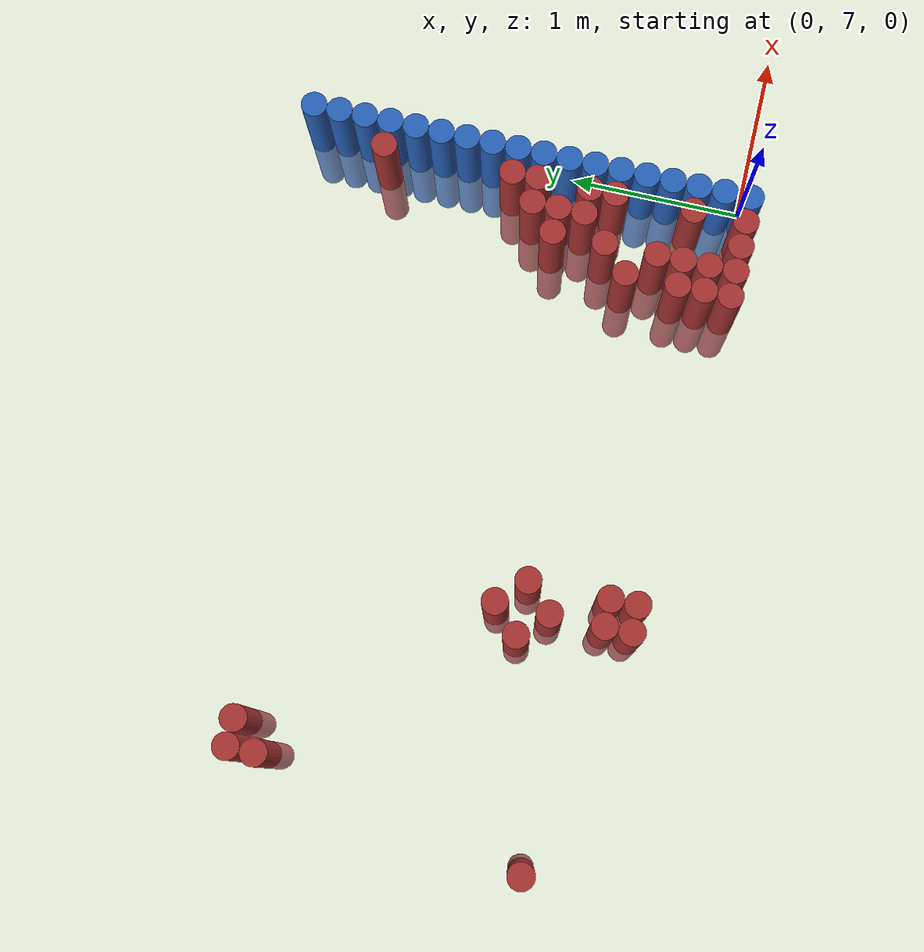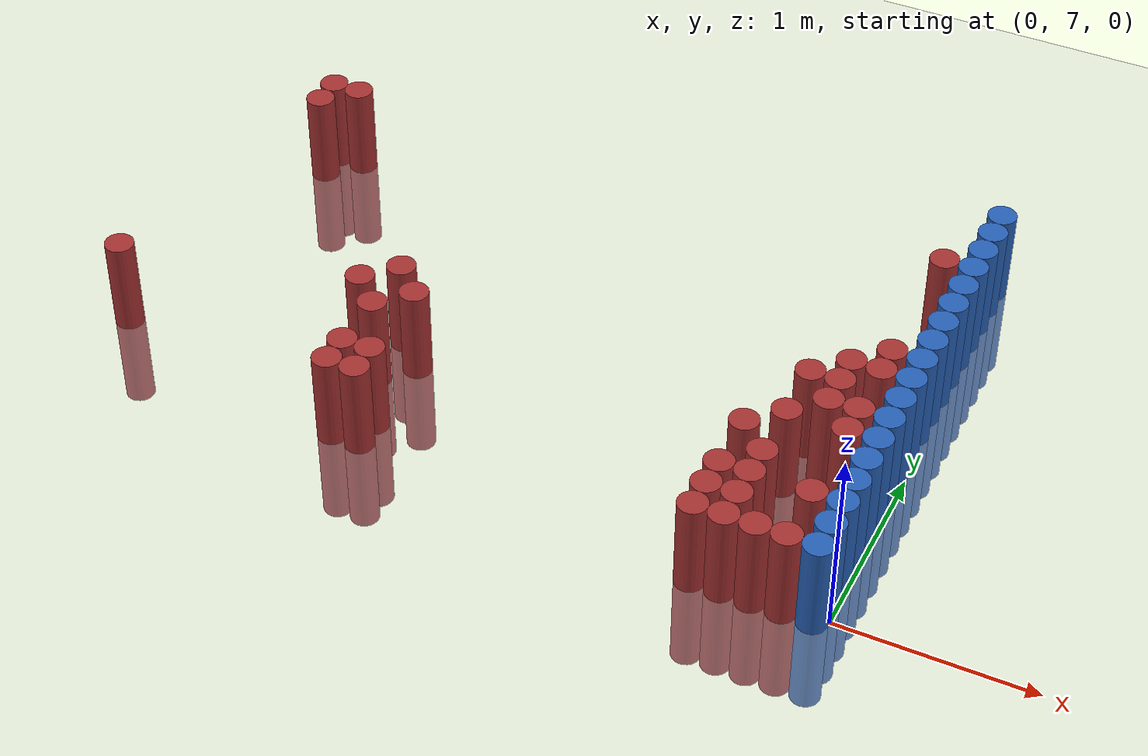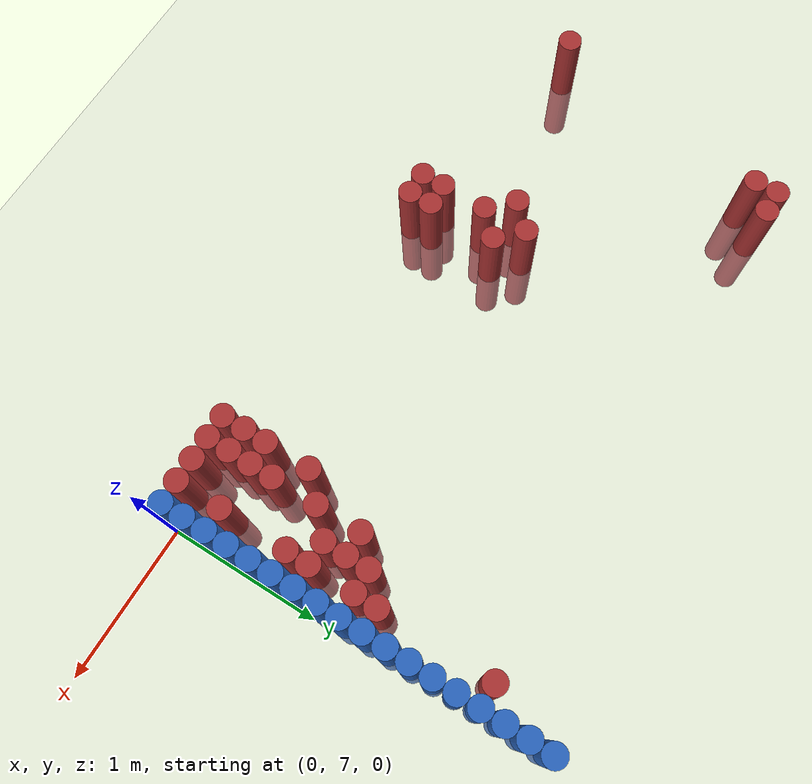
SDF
<sdf version="1.6">
 <world name="default">
  <model name="ground_plane">
   <static>1</static>
   <link name="link">
    <collision name="collision">
     <geometry><plane><normal>0 0 1</normal><size>100 100</size></plane></geometry>
     <surface><friction><ode><mu>100</mu><mu2>50</mu2></ode></friction></surface>
    </collision>
    <visual name="visual">
     <cast_shadows>0</cast_shadows>
     <geometry><plane><normal>0 0 1</normal><size>100 100</size></plane></geometry>
     <material>
      <script><uri>file://media/materials/scripts/gazebo.material</uri><name>Gazebo/Grey</name></script>
     </material>
    </visual>
   </link>
  </model>
  <model name="unit_cylinder_153">
   <static>1</static>
   <pose>-3.975000 7.425000 0.000000 0.000000 0.000000 0.000000</pose>
   <link name="link">
    <inertial>
     <mass>1</mass>
     <inertia><ixx>0.145833</ixx><ixy>0</ixy><ixz>0</ixz><iyy>0.145833</iyy><iyz>0</iyz><izz>0.125</izz></inertia>
    </inertial>
    <collision name="collision">
     <geometry><cylinder><radius>0.075000</radius><length>1</length></cylinder></geometry>
    </collision>
    <visual name="visual">
     <geometry><cylinder><radius>0.075000</radius><length>1</length></cylinder></geometry>
     <material>
      <ambient>0.648000 0.192000 0.192000 1</ambient>
      <diffuse>0.648000 0.192000 0.192000 1</diffuse>
     </material>
     <material>
      <script><name>Gazebo/Grey</name><uri>file://media/materials/scripts/gazebo.material</uri></script>
     </material>
    </visual>
   </link>
  </model>
  <model name="unit_cylinder_155">
   <static>1</static>
   <pose>-3.675000 8.925000 0.000000 0.000000 0.000000 0.000000</pose>
   <link name="link">
    <inertial>
     <mass>1</mass>
     <inertia><ixx>0.145833</ixx><ixy>0</ixy><ixz>0</ixz><iyy>0.145833</iyy><iyz>0</iyz><izz>0.125</izz></inertia>
    </inertial>
    <collision name="collision">
     <geometry><cylinder><radius>0.075000</radius><length>1</length></cylinder></geometry>
    </collision>
    <visual name="visual">
     <geometry><cylinder><radius>0.075000</radius><length>1</length></cylinder></geometry>
     <material>
      <ambient>0.648000 0.192000 0.192000 1</ambient>
      <diffuse>0.648000 0.192000 0.192000 1</diffuse>
     </material>
     <material>
      <script><name>Gazebo/Grey</name><uri>file://media/materials/scripts/gazebo.material</uri></script>
     </material>
    </visual>
   </link>
  </model>
  <model name="unit_cylinder_156">
   <static>1</static>
   <pose>-3.675000 9.075000 0.000000 0.000000 0.000000 0.000000</pose>
   <link name="link">
    <inertial>
     <mass>1</mass>
     <inertia><ixx>0.145833</ixx><ixy>0</ixy><ixz>0</ixz><iyy>0.145833</iyy><iyz>0</iyz><izz>0.125</izz></inertia>
    </inertial>
    <collision name="collision">
     <geometry><cylinder><radius>0.075000</radius><length>1</length></cylinder></geometry>
    </collision>
    <visual name="visual">
     <geometry><cylinder><radius>0.075000</radius><length>1</length></cylinder></geometry>
     <material>
      <ambient>0.648000 0.192000 0.192000 1</ambient>
      <diffuse>0.648000 0.192000 0.192000 1</diffuse>
     </material>
     <material>
      <script><name>Gazebo/Grey</name><uri>file://media/materials/scripts/gazebo.material</uri></script>
     </material>
    </visual>
   </link>
  </model>
  <model name="unit_cylinder_157">
   <static>1</static>
   <pose>-3.525000 9.075000 0.000000 0.000000 0.000000 0.000000</pose>
   <link name="link">
    <inertial>
     <mass>1</mass>
     <inertia><ixx>0.145833</ixx><ixy>0</ixy><ixz>0</ixz><iyy>0.145833</iyy><iyz>0</iyz><izz>0.125</izz></inertia>
    </inertial>
    <collision name="collision">
     <geometry><cylinder><radius>0.075000</radius><length>1</length></cylinder></geometry>
    </collision>
    <visual name="visual">
     <geometry><cylinder><radius>0.075000</radius><length>1</length></cylinder></geometry>
     <material>
      <ambient>0.648000 0.192000 0.192000 1</ambient>
      <diffuse>0.648000 0.192000 0.192000 1</diffuse>
     </material>
     <material>
      <script><name>Gazebo/Grey</name><uri>file://media/materials/scripts/gazebo.material</uri></script>
     </material>
    </visual>
   </link>
  </model>
  <model name="unit_cylinder_162">
   <static>1</static>
   <pose>-2.775000 7.725000 0.000000 0.000000 0.000000 0.000000</pose>
   <link name="link">
    <inertial>
     <mass>1</mass>
     <inertia><ixx>0.145833</ixx><ixy>0</ixy><ixz>0</ixz><iyy>0.145833</iyy><iyz>0</iyz><izz>0.125</izz></inertia>
    </inertial>
    <collision name="collision">
     <geometry><cylinder><radius>0.075000</radius><length>1</length></cylinder></geometry>
    </collision>
    <visual name="visual">
     <geometry><cylinder><radius>0.075000</radius><length>1</length></cylinder></geometry>
     <material>
      <ambient>0.648000 0.192000 0.192000 1</ambient>
      <diffuse>0.648000 0.192000 0.192000 1</diffuse>
     </material>
     <material>
      <script><name>Gazebo/Grey</name><uri>file://media/materials/scripts/gazebo.material</uri></script>
     </material>
    </visual>
   </link>
  </model>
  <model name="unit_cylinder_166">
   <static>1</static>
   <pose>-2.625000 7.125000 0.000000 0.000000 0.000000 0.000000</pose>
   <link name="link">
    <inertial>
     <mass>1</mass>
     <inertia><ixx>0.145833</ixx><ixy>0</ixy><ixz>0</ixz><iyy>0.145833</iyy><iyz>0</iyz><izz>0.125</izz></inertia>
    </inertial>
    <collision name="collision">
     <geometry><cylinder><radius>0.075000</radius><length>1</length></cylinder></geometry>
    </collision>
    <visual name="visual">
     <geometry><cylinder><radius>0.075000</radius><length>1</length></cylinder></geometry>
     <material>
      <ambient>0.648000 0.192000 0.192000 1</ambient>
      <diffuse>0.648000 0.192000 0.192000 1</diffuse>
     </material>
     <material>
      <script><name>Gazebo/Grey</name><uri>file://media/materials/scripts/gazebo.material</uri></script>
     </material>
    </visual>
   </link>
  </model>
  <model name="unit_cylinder_167">
   <static>1</static>
   <pose>-2.625000 7.275000 0.000000 0.000000 0.000000 0.000000</pose>
   <link name="link">
    <inertial>
     <mass>1</mass>
     <inertia><ixx>0.145833</ixx><ixy>0</ixy><ixz>0</ixz><iyy>0.145833</iyy><iyz>0</iyz><izz>0.125</izz></inertia>
    </inertial>
    <collision name="collision">
     <geometry><cylinder><radius>0.075000</radius><length>1</length></cylinder></geometry>
    </collision>
    <visual name="visual">
     <geometry><cylinder><radius>0.075000</radius><length>1</length></cylinder></geometry>
     <material>
      <ambient>0.648000 0.192000 0.192000 1</ambient>
      <diffuse>0.648000 0.192000 0.192000 1</diffuse>
     </material>
     <material>
      <script><name>Gazebo/Grey</name><uri>file://media/materials/scripts/gazebo.material</uri></script>
     </material>
    </visual>
   </link>
  </model>
  <model name="unit_cylinder_168">
   <static>1</static>
   <pose>-2.625000 7.575000 0.000000 0.000000 0.000000 0.000000</pose>
   <link name="link">
    <inertial>
     <mass>1</mass>
     <inertia><ixx>0.145833</ixx><ixy>0</ixy><ixz>0</ixz><iyy>0.145833</iyy><iyz>0</iyz><izz>0.125</izz></inertia>
    </inertial>
    <collision name="collision">
     <geometry><cylinder><radius>0.075000</radius><length>1</length></cylinder></geometry>
    </collision>
    <visual name="visual">
     <geometry><cylinder><radius>0.075000</radius><length>1</length></cylinder></geometry>
     <material>
      <ambient>0.648000 0.192000 0.192000 1</ambient>
      <diffuse>0.648000 0.192000 0.192000 1</diffuse>
     </material>
     <material>
      <script><name>Gazebo/Grey</name><uri>file://media/materials/scripts/gazebo.material</uri></script>
     </material>
    </visual>
   </link>
  </model>
  <model name="unit_cylinder_169">
   <static>1</static>
   <pose>-2.625000 7.875000 0.000000 0.000000 0.000000 0.000000</pose>
   <link name="link">
    <inertial>
     <mass>1</mass>
     <inertia><ixx>0.145833</ixx><ixy>0</ixy><ixz>0</ixz><iyy>0.145833</iyy><iyz>0</iyz><izz>0.125</izz></inertia>
    </inertial>
    <collision name="collision">
     <geometry><cylinder><radius>0.075000</radius><length>1</length></cylinder></geometry>
    </collision>
    <visual name="visual">
     <geometry><cylinder><radius>0.075000</radius><length>1</length></cylinder></geometry>
     <material>
      <ambient>0.648000 0.192000 0.192000 1</ambient>
      <diffuse>0.648000 0.192000 0.192000 1</diffuse>
     </material>
     <material>
      <script><name>Gazebo/Grey</name><uri>file://media/materials/scripts/gazebo.material</uri></script>
     </material>
    </visual>
   </link>
  </model>
  <model name="unit_cylinder_174">
   <static>1</static>
   <pose>-2.475000 7.125000 0.000000 0.000000 0.000000 0.000000</pose>
   <link name="link">
    <inertial>
     <mass>1</mass>
     <inertia><ixx>0.145833</ixx><ixy>0</ixy><ixz>0</ixz><iyy>0.145833</iyy><iyz>0</iyz><izz>0.125</izz></inertia>
    </inertial>
    <collision name="collision">
     <geometry><cylinder><radius>0.075000</radius><length>1</length></cylinder></geometry>
    </collision>
    <visual name="visual">
     <geometry><cylinder><radius>0.075000</radius><length>1</length></cylinder></geometry>
     <material>
      <ambient>0.648000 0.192000 0.192000 1</ambient>
      <diffuse>0.648000 0.192000 0.192000 1</diffuse>
     </material>
     <material>
      <script><name>Gazebo/Grey</name><uri>file://media/materials/scripts/gazebo.material</uri></script>
     </material>
    </visual>
   </link>
  </model>
  <model name="unit_cylinder_175">
   <static>1</static>
   <pose>-2.475000 7.275000 0.000000 0.000000 0.000000 0.000000</pose>
   <link name="link">
    <inertial>
     <mass>1</mass>
     <inertia><ixx>0.145833</ixx><ixy>0</ixy><ixz>0</ixz><iyy>0.145833</iyy><iyz>0</iyz><izz>0.125</izz></inertia>
    </inertial>
    <collision name="collision">
     <geometry><cylinder><radius>0.075000</radius><length>1</length></cylinder></geometry>
    </collision>
    <visual name="visual">
     <geometry><cylinder><radius>0.075000</radius><length>1</length></cylinder></geometry>
     <material>
      <ambient>0.648000 0.192000 0.192000 1</ambient>
      <diffuse>0.648000 0.192000 0.192000 1</diffuse>
     </material>
     <material>
      <script><name>Gazebo/Grey</name><uri>file://media/materials/scripts/gazebo.material</uri></script>
     </material>
    </visual>
   </link>
  </model>
  <model name="unit_cylinder_176">
   <static>1</static>
   <pose>-2.475000 7.725000 0.000000 0.000000 0.000000 0.000000</pose>
   <link name="link">
    <inertial>
     <mass>1</mass>
     <inertia><ixx>0.145833</ixx><ixy>0</ixy><ixz>0</ixz><iyy>0.145833</iyy><iyz>0</iyz><izz>0.125</izz></inertia>
    </inertial>
    <collision name="collision">
     <geometry><cylinder><radius>0.075000</radius><length>1</length></cylinder></geometry>
    </collision>
    <visual name="visual">
     <geometry><cylinder><radius>0.075000</radius><length>1</length></cylinder></geometry>
     <material>
      <ambient>0.648000 0.192000 0.192000 1</ambient>
      <diffuse>0.648000 0.192000 0.192000 1</diffuse>
     </material>
     <material>
      <script><name>Gazebo/Grey</name><uri>file://media/materials/scripts/gazebo.material</uri></script>
     </material>
    </visual>
   </link>
  </model>
  <model name="unit_cylinder_187">
   <static>1</static>
   <pose>-0.675000 6.975000 0.000000 0.000000 0.000000 0.000000</pose>
   <link name="link">
    <inertial>
     <mass>1</mass>
     <inertia><ixx>0.145833</ixx><ixy>0</ixy><ixz>0</ixz><iyy>0.145833</iyy><iyz>0</iyz><izz>0.125</izz></inertia>
    </inertial>
    <collision name="collision">
     <geometry><cylinder><radius>0.075000</radius><length>1</length></cylinder></geometry>
    </collision>
    <visual name="visual">
     <geometry><cylinder><radius>0.075000</radius><length>1</length></cylinder></geometry>
     <material>
      <ambient>0.648000 0.192000 0.192000 1</ambient>
      <diffuse>0.648000 0.192000 0.192000 1</diffuse>
     </material>
     <material>
      <script><name>Gazebo/Grey</name><uri>file://media/materials/scripts/gazebo.material</uri></script>
     </material>
    </visual>
   </link>
  </model>
  <model name="unit_cylinder_188">
   <static>1</static>
   <pose>-0.675000 7.125000 0.000000 0.000000 0.000000 0.000000</pose>
   <link name="link">
    <inertial>
     <mass>1</mass>
     <inertia><ixx>0.145833</ixx><ixy>0</ixy><ixz>0</ixz><iyy>0.145833</iyy><iyz>0</iyz><izz>0.125</izz></inertia>
    </inertial>
    <collision name="collision">
     <geometry><cylinder><radius>0.075000</radius><length>1</length></cylinder></geometry>
    </collision>
    <visual name="visual">
     <geometry><cylinder><radius>0.075000</radius><length>1</length></cylinder></geometry>
     <material>
      <ambient>0.648000 0.192000 0.192000 1</ambient>
      <diffuse>0.648000 0.192000 0.192000 1</diffuse>
     </material>
     <material>
      <script><name>Gazebo/Grey</name><uri>file://media/materials/scripts/gazebo.material</uri></script>
     </material>
    </visual>
   </link>
  </model>
  <model name="unit_cylinder_189">
   <static>1</static>
   <pose>-0.675000 7.275000 0.000000 0.000000 0.000000 0.000000</pose>
   <link name="link">
    <inertial>
     <mass>1</mass>
     <inertia><ixx>0.145833</ixx><ixy>0</ixy><ixz>0</ixz><iyy>0.145833</iyy><iyz>0</iyz><izz>0.125</izz></inertia>
    </inertial>
    <collision name="collision">
     <geometry><cylinder><radius>0.075000</radius><length>1</length></cylinder></geometry>
    </collision>
    <visual name="visual">
     <geometry><cylinder><radius>0.075000</radius><length>1</length></cylinder></geometry>
     <material>
      <ambient>0.648000 0.192000 0.192000 1</ambient>
      <diffuse>0.648000 0.192000 0.192000 1</diffuse>
     </material>
     <material>
      <script><name>Gazebo/Grey</name><uri>file://media/materials/scripts/gazebo.material</uri></script>
     </material>
    </visual>
   </link>
  </model>
  <model name="unit_cylinder_190">
   <static>1</static>
   <pose>-0.675000 7.575000 0.000000 0.000000 0.000000 0.000000</pose>
   <link name="link">
    <inertial>
     <mass>1</mass>
     <inertia><ixx>0.145833</ixx><ixy>0</ixy><ixz>0</ixz><iyy>0.145833</iyy><iyz>0</iyz><izz>0.125</izz></inertia>
    </inertial>
    <collision name="collision">
     <geometry><cylinder><radius>0.075000</radius><length>1</length></cylinder></geometry>
    </collision>
    <visual name="visual">
     <geometry><cylinder><radius>0.075000</radius><length>1</length></cylinder></geometry>
     <material>
      <ambient>0.648000 0.192000 0.192000 1</ambient>
      <diffuse>0.648000 0.192000 0.192000 1</diffuse>
     </material>
     <material>
      <script><name>Gazebo/Grey</name><uri>file://media/materials/scripts/gazebo.material</uri></script>
     </material>
    </visual>
   </link>
  </model>
  <model name="unit_cylinder_195">
   <static>1</static>
   <pose>-0.525000 6.975000 0.000000 0.000000 0.000000 0.000000</pose>
   <link name="link">
    <inertial>
     <mass>1</mass>
     <inertia><ixx>0.145833</ixx><ixy>0</ixy><ixz>0</ixz><iyy>0.145833</iyy><iyz>0</iyz><izz>0.125</izz></inertia>
    </inertial>
    <collision name="collision">
     <geometry><cylinder><radius>0.075000</radius><length>1</length></cylinder></geometry>
    </collision>
    <visual name="visual">
     <geometry><cylinder><radius>0.075000</radius><length>1</length></cylinder></geometry>
     <material>
      <ambient>0.648000 0.192000 0.192000 1</ambient>
      <diffuse>0.648000 0.192000 0.192000 1</diffuse>
     </material>
     <material>
      <script><name>Gazebo/Grey</name><uri>file://media/materials/scripts/gazebo.material</uri></script>
     </material>
    </visual>
   </link>
  </model>
  <model name="unit_cylinder_196">
   <static>1</static>
   <pose>-0.525000 7.125000 0.000000 0.000000 0.000000 0.000000</pose>
   <link name="link">
    <inertial>
     <mass>1</mass>
     <inertia><ixx>0.145833</ixx><ixy>0</ixy><ixz>0</ixz><iyy>0.145833</iyy><iyz>0</iyz><izz>0.125</izz></inertia>
    </inertial>
    <collision name="collision">
     <geometry><cylinder><radius>0.075000</radius><length>1</length></cylinder></geometry>
    </collision>
    <visual name="visual">
     <geometry><cylinder><radius>0.075000</radius><length>1</length></cylinder></geometry>
     <material>
      <ambient>0.648000 0.192000 0.192000 1</ambient>
      <diffuse>0.648000 0.192000 0.192000 1</diffuse>
     </material>
     <material>
      <script><name>Gazebo/Grey</name><uri>file://media/materials/scripts/gazebo.material</uri></script>
     </material>
    </visual>
   </link>
  </model>
  <model name="unit_cylinder_197">
   <static>1</static>
   <pose>-0.525000 7.275000 0.000000 0.000000 0.000000 0.000000</pose>
   <link name="link">
    <inertial>
     <mass>1</mass>
     <inertia><ixx>0.145833</ixx><ixy>0</ixy><ixz>0</ixz><iyy>0.145833</iyy><iyz>0</iyz><izz>0.125</izz></inertia>
    </inertial>
    <collision name="collision">
     <geometry><cylinder><radius>0.075000</radius><length>1</length></cylinder></geometry>
    </collision>
    <visual name="visual">
     <geometry><cylinder><radius>0.075000</radius><length>1</length></cylinder></geometry>
     <material>
      <ambient>0.648000 0.192000 0.192000 1</ambient>
      <diffuse>0.648000 0.192000 0.192000 1</diffuse>
     </material>
     <material>
      <script><name>Gazebo/Grey</name><uri>file://media/materials/scripts/gazebo.material</uri></script>
     </material>
    </visual>
   </link>
  </model>
  <model name="unit_cylinder_198">
   <static>1</static>
   <pose>-0.525000 7.425000 0.000000 0.000000 0.000000 0.000000</pose>
   <link name="link">
    <inertial>
     <mass>1</mass>
     <inertia><ixx>0.145833</ixx><ixy>0</ixy><ixz>0</ixz><iyy>0.145833</iyy><iyz>0</iyz><izz>0.125</izz></inertia>
    </inertial>
    <collision name="collision">
     <geometry><cylinder><radius>0.075000</radius><length>1</length></cylinder></geometry>
    </collision>
    <visual name="visual">
     <geometry><cylinder><radius>0.075000</radius><length>1</length></cylinder></geometry>
     <material>
      <ambient>0.648000 0.192000 0.192000 1</ambient>
      <diffuse>0.648000 0.192000 0.192000 1</diffuse>
     </material>
     <material>
      <script><name>Gazebo/Grey</name><uri>file://media/materials/scripts/gazebo.material</uri></script>
     </material>
    </visual>
   </link>
  </model>
  <model name="unit_cylinder_199">
   <static>1</static>
   <pose>-0.525000 7.725000 0.000000 0.000000 0.000000 0.000000</pose>
   <link name="link">
    <inertial>
     <mass>1</mass>
     <inertia><ixx>0.145833</ixx><ixy>0</ixy><ixz>0</ixz><iyy>0.145833</iyy><iyz>0</iyz><izz>0.125</izz></inertia>
    </inertial>
    <collision name="collision">
     <geometry><cylinder><radius>0.075000</radius><length>1</length></cylinder></geometry>
    </collision>
    <visual name="visual">
     <geometry><cylinder><radius>0.075000</radius><length>1</length></cylinder></geometry>
     <material>
      <ambient>0.648000 0.192000 0.192000 1</ambient>
      <diffuse>0.648000 0.192000 0.192000 1</diffuse>
     </material>
     <material>
      <script><name>Gazebo/Grey</name><uri>file://media/materials/scripts/gazebo.material</uri></script>
     </material>
    </visual>
   </link>
  </model>
  <model name="unit_cylinder_200">
   <static>1</static>
   <pose>-0.525000 8.025000 0.000000 0.000000 0.000000 0.000000</pose>
   <link name="link">
    <inertial>
     <mass>1</mass>
     <inertia><ixx>0.145833</ixx><ixy>0</ixy><ixz>0</ixz><iyy>0.145833</iyy><iyz>0</iyz><izz>0.125</izz></inertia>
    </inertial>
    <collision name="collision">
     <geometry><cylinder><radius>0.075000</radius><length>1</length></cylinder></geometry>
    </collision>
    <visual name="visual">
     <geometry><cylinder><radius>0.075000</radius><length>1</length></cylinder></geometry>
     <material>
      <ambient>0.648000 0.192000 0.192000 1</ambient>
      <diffuse>0.648000 0.192000 0.192000 1</diffuse>
     </material>
     <material>
      <script><name>Gazebo/Grey</name><uri>file://media/materials/scripts/gazebo.material</uri></script>
     </material>
    </visual>
   </link>
  </model>
  <model name="unit_cylinder_206">
   <static>1</static>
   <pose>-0.375000 6.975000 0.000000 0.000000 0.000000 0.000000</pose>
   <link name="link">
    <inertial>
     <mass>1</mass>
     <inertia><ixx>0.145833</ixx><ixy>0</ixy><ixz>0</ixz><iyy>0.145833</iyy><iyz>0</iyz><izz>0.125</izz></inertia>
    </inertial>
    <collision name="collision">
     <geometry><cylinder><radius>0.075000</radius><length>1</length></cylinder></geometry>
    </collision>
    <visual name="visual">
     <geometry><cylinder><radius>0.075000</radius><length>1</length></cylinder></geometry>
     <material>
      <ambient>0.648000 0.192000 0.192000 1</ambient>
      <diffuse>0.648000 0.192000 0.192000 1</diffuse>
     </material>
     <material>
      <script><name>Gazebo/Grey</name><uri>file://media/materials/scripts/gazebo.material</uri></script>
     </material>
    </visual>
   </link>
  </model>
  <model name="unit_cylinder_207">
   <static>1</static>
   <pose>-0.375000 7.875000 0.000000 0.000000 0.000000 0.000000</pose>
   <link name="link">
    <inertial>
     <mass>1</mass>
     <inertia><ixx>0.145833</ixx><ixy>0</ixy><ixz>0</ixz><iyy>0.145833</iyy><iyz>0</iyz><izz>0.125</izz></inertia>
    </inertial>
    <collision name="collision">
     <geometry><cylinder><radius>0.075000</radius><length>1</length></cylinder></geometry>
    </collision>
    <visual name="visual">
     <geometry><cylinder><radius>0.075000</radius><length>1</length></cylinder></geometry>
     <material>
      <ambient>0.648000 0.192000 0.192000 1</ambient>
      <diffuse>0.648000 0.192000 0.192000 1</diffuse>
     </material>
     <material>
      <script><name>Gazebo/Grey</name><uri>file://media/materials/scripts/gazebo.material</uri></script>
     </material>
    </visual>
   </link>
  </model>
  <model name="unit_cylinder_208">
   <static>1</static>
   <pose>-0.375000 8.025000 0.000000 0.000000 0.000000 0.000000</pose>
   <link name="link">
    <inertial>
     <mass>1</mass>
     <inertia><ixx>0.145833</ixx><ixy>0</ixy><ixz>0</ixz><iyy>0.145833</iyy><iyz>0</iyz><izz>0.125</izz></inertia>
    </inertial>
    <collision name="collision">
     <geometry><cylinder><radius>0.075000</radius><length>1</length></cylinder></geometry>
    </collision>
    <visual name="visual">
     <geometry><cylinder><radius>0.075000</radius><length>1</length></cylinder></geometry>
     <material>
      <ambient>0.648000 0.192000 0.192000 1</ambient>
      <diffuse>0.648000 0.192000 0.192000 1</diffuse>
     </material>
     <material>
      <script><name>Gazebo/Grey</name><uri>file://media/materials/scripts/gazebo.material</uri></script>
     </material>
    </visual>
   </link>
  </model>
  <model name="unit_cylinder_209">
   <static>1</static>
   <pose>-0.375000 8.175000 0.000000 0.000000 0.000000 0.000000</pose>
   <link name="link">
    <inertial>
     <mass>1</mass>
     <inertia><ixx>0.145833</ixx><ixy>0</ixy><ixz>0</ixz><iyy>0.145833</iyy><iyz>0</iyz><izz>0.125</izz></inertia>
    </inertial>
    <collision name="collision">
     <geometry><cylinder><radius>0.075000</radius><length>1</length></cylinder></geometry>
    </collision>
    <visual name="visual">
     <geometry><cylinder><radius>0.075000</radius><length>1</length></cylinder></geometry>
     <material>
      <ambient>0.648000 0.192000 0.192000 1</ambient>
      <diffuse>0.648000 0.192000 0.192000 1</diffuse>
     </material>
     <material>
      <script><name>Gazebo/Grey</name><uri>file://media/materials/scripts/gazebo.material</uri></script>
     </material>
    </visual>
   </link>
  </model>
  <model name="unit_cylinder_217">
   <static>1</static>
   <pose>-0.225000 6.975000 0.000000 0.000000 0.000000 0.000000</pose>
   <link name="link">
    <inertial>
     <mass>1</mass>
     <inertia><ixx>0.145833</ixx><ixy>0</ixy><ixz>0</ixz><iyy>0.145833</iyy><iyz>0</iyz><izz>0.125</izz></inertia>
    </inertial>
    <collision name="collision">
     <geometry><cylinder><radius>0.075000</radius><length>1</length></cylinder></geometry>
    </collision>
    <visual name="visual">
     <geometry><cylinder><radius>0.075000</radius><length>1</length></cylinder></geometry>
     <material>
      <ambient>0.648000 0.192000 0.192000 1</ambient>
      <diffuse>0.648000 0.192000 0.192000 1</diffuse>
     </material>
     <material>
      <script><name>Gazebo/Grey</name><uri>file://media/materials/scripts/gazebo.material</uri></script>
     </material>
    </visual>
   </link>
  </model>
  <model name="unit_cylinder_218">
   <static>1</static>
   <pose>-0.225000 7.275000 0.000000 0.000000 0.000000 0.000000</pose>
   <link name="link">
    <inertial>
     <mass>1</mass>
     <inertia><ixx>0.145833</ixx><ixy>0</ixy><ixz>0</ixz><iyy>0.145833</iyy><iyz>0</iyz><izz>0.125</izz></inertia>
    </inertial>
    <collision name="collision">
     <geometry><cylinder><radius>0.075000</radius><length>1</length></cylinder></geometry>
    </collision>
    <visual name="visual">
     <geometry><cylinder><radius>0.075000</radius><length>1</length></cylinder></geometry>
     <material>
      <ambient>0.648000 0.192000 0.192000 1</ambient>
      <diffuse>0.648000 0.192000 0.192000 1</diffuse>
     </material>
     <material>
      <script><name>Gazebo/Grey</name><uri>file://media/materials/scripts/gazebo.material</uri></script>
     </material>
    </visual>
   </link>
  </model>
  <model name="unit_cylinder_219">
   <static>1</static>
   <pose>-0.225000 7.725000 0.000000 0.000000 0.000000 0.000000</pose>
   <link name="link">
    <inertial>
     <mass>1</mass>
     <inertia><ixx>0.145833</ixx><ixy>0</ixy><ixz>0</ixz><iyy>0.145833</iyy><iyz>0</iyz><izz>0.125</izz></inertia>
    </inertial>
    <collision name="collision">
     <geometry><cylinder><radius>0.075000</radius><length>1</length></cylinder></geometry>
    </collision>
    <visual name="visual">
     <geometry><cylinder><radius>0.075000</radius><length>1</length></cylinder></geometry>
     <material>
      <ambient>0.648000 0.192000 0.192000 1</ambient>
      <diffuse>0.648000 0.192000 0.192000 1</diffuse>
     </material>
     <material>
      <script><name>Gazebo/Grey</name><uri>file://media/materials/scripts/gazebo.material</uri></script>
     </material>
    </visual>
   </link>
  </model>
  <model name="unit_cylinder_220">
   <static>1</static>
   <pose>-0.225000 7.875000 0.000000 0.000000 0.000000 0.000000</pose>
   <link name="link">
    <inertial>
     <mass>1</mass>
     <inertia><ixx>0.145833</ixx><ixy>0</ixy><ixz>0</ixz><iyy>0.145833</iyy><iyz>0</iyz><izz>0.125</izz></inertia>
    </inertial>
    <collision name="collision">
     <geometry><cylinder><radius>0.075000</radius><length>1</length></cylinder></geometry>
    </collision>
    <visual name="visual">
     <geometry><cylinder><radius>0.075000</radius><length>1</length></cylinder></geometry>
     <material>
      <ambient>0.648000 0.192000 0.192000 1</ambient>
      <diffuse>0.648000 0.192000 0.192000 1</diffuse>
     </material>
     <material>
      <script><name>Gazebo/Grey</name><uri>file://media/materials/scripts/gazebo.material</uri></script>
     </material>
    </visual>
   </link>
  </model>
  <model name="unit_cylinder_221">
   <static>1</static>
   <pose>-0.225000 8.175000 0.000000 0.000000 0.000000 0.000000</pose>
   <link name="link">
    <inertial>
     <mass>1</mass>
     <inertia><ixx>0.145833</ixx><ixy>0</ixy><ixz>0</ixz><iyy>0.145833</iyy><iyz>0</iyz><izz>0.125</izz></inertia>
    </inertial>
    <collision name="collision">
     <geometry><cylinder><radius>0.075000</radius><length>1</length></cylinder></geometry>
    </collision>
    <visual name="visual">
     <geometry><cylinder><radius>0.075000</radius><length>1</length></cylinder></geometry>
     <material>
      <ambient>0.648000 0.192000 0.192000 1</ambient>
      <diffuse>0.648000 0.192000 0.192000 1</diffuse>
     </material>
     <material>
      <script><name>Gazebo/Grey</name><uri>file://media/materials/scripts/gazebo.material</uri></script>
     </material>
    </visual>
   </link>
  </model>
  <model name="unit_cylinder_222">
   <static>1</static>
   <pose>-0.225000 8.325000 0.000000 0.000000 0.000000 0.000000</pose>
   <link name="link">
    <inertial>
     <mass>1</mass>
     <inertia><ixx>0.145833</ixx><ixy>0</ixy><ixz>0</ixz><iyy>0.145833</iyy><iyz>0</iyz><izz>0.125</izz></inertia>
    </inertial>
    <collision name="collision">
     <geometry><cylinder><radius>0.075000</radius><length>1</length></cylinder></geometry>
    </collision>
    <visual name="visual">
     <geometry><cylinder><radius>0.075000</radius><length>1</length></cylinder></geometry>
     <material>
      <ambient>0.648000 0.192000 0.192000 1</ambient>
      <diffuse>0.648000 0.192000 0.192000 1</diffuse>
     </material>
     <material>
      <script><name>Gazebo/Grey</name><uri>file://media/materials/scripts/gazebo.material</uri></script>
     </material>
    </visual>
   </link>
  </model>
  <model name="unit_cylinder_223">
   <static>1</static>
   <pose>-0.225000 9.075000 0.000000 0.000000 0.000000 0.000000</pose>
   <link name="link">
    <inertial>
     <mass>1</mass>
     <inertia><ixx>0.145833</ixx><ixy>0</ixy><ixz>0</ixz><iyy>0.145833</iyy><iyz>0</iyz><izz>0.125</izz></inertia>
    </inertial>
    <collision name="collision">
     <geometry><cylinder><radius>0.075000</radius><length>1</length></cylinder></geometry>
    </collision>
    <visual name="visual">
     <geometry><cylinder><radius>0.075000</radius><length>1</length></cylinder></geometry>
     <material>
      <ambient>0.648000 0.192000 0.192000 1</ambient>
      <diffuse>0.648000 0.192000 0.192000 1</diffuse>
     </material>
     <material>
      <script><name>Gazebo/Grey</name><uri>file://media/materials/scripts/gazebo.material</uri></script>
     </material>
    </visual>
   </link>
  </model>
  <model name="unit_cylinder_236">
   <static>1</static>
   <pose>-0.075000 6.975000 0.000000 0.000000 0.000000 0.000000</pose>
   <link name="link">
    <inertial>
     <mass>1</mass>
     <inertia><ixx>0.145833</ixx><ixy>0</ixy><ixz>0</ixz><iyy>0.145833</iyy><iyz>0</iyz><izz>0.125</izz></inertia>
    </inertial>
    <collision name="collision">
     <geometry><cylinder><radius>0.075000</radius><length>1</length></cylinder></geometry>
    </collision>
    <visual name="visual">
     <geometry><cylinder><radius>0.075000</radius><length>1</length></cylinder></geometry>
     <material>
      <ambient>0.152000 0.379000 0.720000 1</ambient>
      <diffuse>0.152000 0.379000 0.720000 1</diffuse>
     </material>
     <material>
      <script><name>Gazebo/Grey</name><uri>file://media/materials/scripts/gazebo.material</uri></script>
     </material>
    </visual>
   </link>
  </model>
  <model name="unit_cylinder_237">
   <static>1</static>
   <pose>-0.075000 7.125000 0.000000 0.000000 0.000000 0.000000</pose>
   <link name="link">
    <inertial>
     <mass>1</mass>
     <inertia><ixx>0.145833</ixx><ixy>0</ixy><ixz>0</ixz><iyy>0.145833</iyy><iyz>0</iyz><izz>0.125</izz></inertia>
    </inertial>
    <collision name="collision">
     <geometry><cylinder><radius>0.075000</radius><length>1</length></cylinder></geometry>
    </collision>
    <visual name="visual">
     <geometry><cylinder><radius>0.075000</radius><length>1</length></cylinder></geometry>
     <material>
      <ambient>0.152000 0.379000 0.720000 1</ambient>
      <diffuse>0.152000 0.379000 0.720000 1</diffuse>
     </material>
     <material>
      <script><name>Gazebo/Grey</name><uri>file://media/materials/scripts/gazebo.material</uri></script>
     </material>
    </visual>
   </link>
  </model>
  <model name="unit_cylinder_238">
   <static>1</static>
   <pose>-0.075000 7.275000 0.000000 0.000000 0.000000 0.000000</pose>
   <link name="link">
    <inertial>
     <mass>1</mass>
     <inertia><ixx>0.145833</ixx><ixy>0</ixy><ixz>0</ixz><iyy>0.145833</iyy><iyz>0</iyz><izz>0.125</izz></inertia>
    </inertial>
    <collision name="collision">
     <geometry><cylinder><radius>0.075000</radius><length>1</length></cylinder></geometry>
    </collision>
    <visual name="visual">
     <geometry><cylinder><radius>0.075000</radius><length>1</length></cylinder></geometry>
     <material>
      <ambient>0.152000 0.379000 0.720000 1</ambient>
      <diffuse>0.152000 0.379000 0.720000 1</diffuse>
     </material>
     <material>
      <script><name>Gazebo/Grey</name><uri>file://media/materials/scripts/gazebo.material</uri></script>
     </material>
    </visual>
   </link>
  </model>
  <model name="unit_cylinder_239">
   <static>1</static>
   <pose>-0.075000 7.425000 0.000000 0.000000 0.000000 0.000000</pose>
   <link name="link">
    <inertial>
     <mass>1</mass>
     <inertia><ixx>0.145833</ixx><ixy>0</ixy><ixz>0</ixz><iyy>0.145833</iyy><iyz>0</iyz><izz>0.125</izz></inertia>
    </inertial>
    <collision name="collision">
     <geometry><cylinder><radius>0.075000</radius><length>1</length></cylinder></geometry>
    </collision>
    <visual name="visual">
     <geometry><cylinder><radius>0.075000</radius><length>1</length></cylinder></geometry>
     <material>
      <ambient>0.152000 0.379000 0.720000 1</ambient>
      <diffuse>0.152000 0.379000 0.720000 1</diffuse>
     </material>
     <material>
      <script><name>Gazebo/Grey</name><uri>file://media/materials/scripts/gazebo.material</uri></script>
     </material>
    </visual>
   </link>
  </model>
  <model name="unit_cylinder_240">
   <static>1</static>
   <pose>-0.075000 7.575000 0.000000 0.000000 0.000000 0.000000</pose>
   <link name="link">
    <inertial>
     <mass>1</mass>
     <inertia><ixx>0.145833</ixx><ixy>0</ixy><ixz>0</ixz><iyy>0.145833</iyy><iyz>0</iyz><izz>0.125</izz></inertia>
    </inertial>
    <collision name="collision">
     <geometry><cylinder><radius>0.075000</radius><length>1</length></cylinder></geometry>
    </collision>
    <visual name="visual">
     <geometry><cylinder><radius>0.075000</radius><length>1</length></cylinder></geometry>
     <material>
      <ambient>0.152000 0.379000 0.720000 1</ambient>
      <diffuse>0.152000 0.379000 0.720000 1</diffuse>
     </material>
     <material>
      <script><name>Gazebo/Grey</name><uri>file://media/materials/scripts/gazebo.material</uri></script>
     </material>
    </visual>
   </link>
  </model>
  <model name="unit_cylinder_241">
   <static>1</static>
   <pose>-0.075000 7.725000 0.000000 0.000000 0.000000 0.000000</pose>
   <link name="link">
    <inertial>
     <mass>1</mass>
     <inertia><ixx>0.145833</ixx><ixy>0</ixy><ixz>0</ixz><iyy>0.145833</iyy><iyz>0</iyz><izz>0.125</izz></inertia>
    </inertial>
    <collision name="collision">
     <geometry><cylinder><radius>0.075000</radius><length>1</length></cylinder></geometry>
    </collision>
    <visual name="visual">
     <geometry><cylinder><radius>0.075000</radius><length>1</length></cylinder></geometry>
     <material>
      <ambient>0.152000 0.379000 0.720000 1</ambient>
      <diffuse>0.152000 0.379000 0.720000 1</diffuse>
     </material>
     <material>
      <script><name>Gazebo/Grey</name><uri>file://media/materials/scripts/gazebo.material</uri></script>
     </material>
    </visual>
   </link>
  </model>
  <model name="unit_cylinder_242">
   <static>1</static>
   <pose>-0.075000 7.875000 0.000000 0.000000 0.000000 0.000000</pose>
   <link name="link">
    <inertial>
     <mass>1</mass>
     <inertia><ixx>0.145833</ixx><ixy>0</ixy><ixz>0</ixz><iyy>0.145833</iyy><iyz>0</iyz><izz>0.125</izz></inertia>
    </inertial>
    <collision name="collision">
     <geometry><cylinder><radius>0.075000</radius><length>1</length></cylinder></geometry>
    </collision>
    <visual name="visual">
     <geometry><cylinder><radius>0.075000</radius><length>1</length></cylinder></geometry>
     <material>
      <ambient>0.152000 0.379000 0.720000 1</ambient>
      <diffuse>0.152000 0.379000 0.720000 1</diffuse>
     </material>
     <material>
      <script><name>Gazebo/Grey</name><uri>file://media/materials/scripts/gazebo.material</uri></script>
     </material>
    </visual>
   </link>
  </model>
  <model name="unit_cylinder_243">
   <static>1</static>
   <pose>-0.075000 8.025000 0.000000 0.000000 0.000000 0.000000</pose>
   <link name="link">
    <inertial>
     <mass>1</mass>
     <inertia><ixx>0.145833</ixx><ixy>0</ixy><ixz>0</ixz><iyy>0.145833</iyy><iyz>0</iyz><izz>0.125</izz></inertia>
    </inertial>
    <collision name="collision">
     <geometry><cylinder><radius>0.075000</radius><length>1</length></cylinder></geometry>
    </collision>
    <visual name="visual">
     <geometry><cylinder><radius>0.075000</radius><length>1</length></cylinder></geometry>
     <material>
      <ambient>0.152000 0.379000 0.720000 1</ambient>
      <diffuse>0.152000 0.379000 0.720000 1</diffuse>
     </material>
     <material>
      <script><name>Gazebo/Grey</name><uri>file://media/materials/scripts/gazebo.material</uri></script>
     </material>
    </visual>
   </link>
  </model>
  <model name="unit_cylinder_244">
   <static>1</static>
   <pose>-0.075000 8.175000 0.000000 0.000000 0.000000 0.000000</pose>
   <link name="link">
    <inertial>
     <mass>1</mass>
     <inertia><ixx>0.145833</ixx><ixy>0</ixy><ixz>0</ixz><iyy>0.145833</iyy><iyz>0</iyz><izz>0.125</izz></inertia>
    </inertial>
    <collision name="collision">
     <geometry><cylinder><radius>0.075000</radius><length>1</length></cylinder></geometry>
    </collision>
    <visual name="visual">
     <geometry><cylinder><radius>0.075000</radius><length>1</length></cylinder></geometry>
     <material>
      <ambient>0.152000 0.379000 0.720000 1</ambient>
      <diffuse>0.152000 0.379000 0.720000 1</diffuse>
     </material>
     <material>
      <script><name>Gazebo/Grey</name><uri>file://media/materials/scripts/gazebo.material</uri></script>
     </material>
    </visual>
   </link>
  </model>
  <model name="unit_cylinder_245">
   <static>1</static>
   <pose>-0.075000 8.325000 0.000000 0.000000 0.000000 0.000000</pose>
   <link name="link">
    <inertial>
     <mass>1</mass>
     <inertia><ixx>0.145833</ixx><ixy>0</ixy><ixz>0</ixz><iyy>0.145833</iyy><iyz>0</iyz><izz>0.125</izz></inertia>
    </inertial>
    <collision name="collision">
     <geometry><cylinder><radius>0.075000</radius><length>1</length></cylinder></geometry>
    </collision>
    <visual name="visual">
     <geometry><cylinder><radius>0.075000</radius><length>1</length></cylinder></geometry>
     <material>
      <ambient>0.152000 0.379000 0.720000 1</ambient>
      <diffuse>0.152000 0.379000 0.720000 1</diffuse>
     </material>
     <material>
      <script><name>Gazebo/Grey</name><uri>file://media/materials/scripts/gazebo.material</uri></script>
     </material>
    </visual>
   </link>
  </model>
  <model name="unit_cylinder_246">
   <static>1</static>
   <pose>-0.075000 8.475000 0.000000 0.000000 0.000000 0.000000</pose>
   <link name="link">
    <inertial>
     <mass>1</mass>
     <inertia><ixx>0.145833</ixx><ixy>0</ixy><ixz>0</ixz><iyy>0.145833</iyy><iyz>0</iyz><izz>0.125</izz></inertia>
    </inertial>
    <collision name="collision">
     <geometry><cylinder><radius>0.075000</radius><length>1</length></cylinder></geometry>
    </collision>
    <visual name="visual">
     <geometry><cylinder><radius>0.075000</radius><length>1</length></cylinder></geometry>
     <material>
      <ambient>0.152000 0.379000 0.720000 1</ambient>
      <diffuse>0.152000 0.379000 0.720000 1</diffuse>
     </material>
     <material>
      <script><name>Gazebo/Grey</name><uri>file://media/materials/scripts/gazebo.material</uri></script>
     </material>
    </visual>
   </link>
  </model>
  <model name="unit_cylinder_247">
   <static>1</static>
   <pose>-0.075000 8.625000 0.000000 0.000000 0.000000 0.000000</pose>
   <link name="link">
    <inertial>
     <mass>1</mass>
     <inertia><ixx>0.145833</ixx><ixy>0</ixy><ixz>0</ixz><iyy>0.145833</iyy><iyz>0</iyz><izz>0.125</izz></inertia>
    </inertial>
    <collision name="collision">
     <geometry><cylinder><radius>0.075000</radius><length>1</length></cylinder></geometry>
    </collision>
    <visual name="visual">
     <geometry><cylinder><radius>0.075000</radius><length>1</length></cylinder></geometry>
     <material>
      <ambient>0.152000 0.379000 0.720000 1</ambient>
      <diffuse>0.152000 0.379000 0.720000 1</diffuse>
     </material>
     <material>
      <script><name>Gazebo/Grey</name><uri>file://media/materials/scripts/gazebo.material</uri></script>
     </material>
    </visual>
   </link>
  </model>
  <model name="unit_cylinder_248">
   <static>1</static>
   <pose>-0.075000 8.775000 0.000000 0.000000 0.000000 0.000000</pose>
   <link name="link">
    <inertial>
     <mass>1</mass>
     <inertia><ixx>0.145833</ixx><ixy>0</ixy><ixz>0</ixz><iyy>0.145833</iyy><iyz>0</iyz><izz>0.125</izz></inertia>
    </inertial>
    <collision name="collision">
     <geometry><cylinder><radius>0.075000</radius><length>1</length></cylinder></geometry>
    </collision>
    <visual name="visual">
     <geometry><cylinder><radius>0.075000</radius><length>1</length></cylinder></geometry>
     <material>
      <ambient>0.152000 0.379000 0.720000 1</ambient>
      <diffuse>0.152000 0.379000 0.720000 1</diffuse>
     </material>
     <material>
      <script><name>Gazebo/Grey</name><uri>file://media/materials/scripts/gazebo.material</uri></script>
     </material>
    </visual>
   </link>
  </model>
  <model name="unit_cylinder_249">
   <static>1</static>
   <pose>-0.075000 8.925000 0.000000 0.000000 0.000000 0.000000</pose>
   <link name="link">
    <inertial>
     <mass>1</mass>
     <inertia><ixx>0.145833</ixx><ixy>0</ixy><ixz>0</ixz><iyy>0.145833</iyy><iyz>0</iyz><izz>0.125</izz></inertia>
    </inertial>
    <collision name="collision">
     <geometry><cylinder><radius>0.075000</radius><length>1</length></cylinder></geometry>
    </collision>
    <visual name="visual">
     <geometry><cylinder><radius>0.075000</radius><length>1</length></cylinder></geometry>
     <material>
      <ambient>0.152000 0.379000 0.720000 1</ambient>
      <diffuse>0.152000 0.379000 0.720000 1</diffuse>
     </material>
     <material>
      <script><name>Gazebo/Grey</name><uri>file://media/materials/scripts/gazebo.material</uri></script>
     </material>
    </visual>
   </link>
  </model>
  <model name="unit_cylinder_250">
   <static>1</static>
   <pose>-0.075000 9.075000 0.000000 0.000000 0.000000 0.000000</pose>
   <link name="link">
    <inertial>
     <mass>1</mass>
     <inertia><ixx>0.145833</ixx><ixy>0</ixy><ixz>0</ixz><iyy>0.145833</iyy><iyz>0</iyz><izz>0.125</izz></inertia>
    </inertial>
    <collision name="collision">
     <geometry><cylinder><radius>0.075000</radius><length>1</length></cylinder></geometry>
    </collision>
    <visual name="visual">
     <geometry><cylinder><radius>0.075000</radius><length>1</length></cylinder></geometry>
     <material>
      <ambient>0.152000 0.379000 0.720000 1</ambient>
      <diffuse>0.152000 0.379000 0.720000 1</diffuse>
     </material>
     <material>
      <script><name>Gazebo/Grey</name><uri>file://media/materials/scripts/gazebo.material</uri></script>
     </material>
    </visual>
   </link>
  </model>
  <model name="unit_cylinder_251">
   <static>1</static>
   <pose>-0.075000 9.225000 0.000000 0.000000 0.000000 0.000000</pose>
   <link name="link">
    <inertial>
     <mass>1</mass>
     <inertia><ixx>0.145833</ixx><ixy>0</ixy><ixz>0</ixz><iyy>0.145833</iyy><iyz>0</iyz><izz>0.125</izz></inertia>
    </inertial>
    <collision name="collision">
     <geometry><cylinder><radius>0.075000</radius><length>1</length></cylinder></geometry>
    </collision>
    <visual name="visual">
     <geometry><cylinder><radius>0.075000</radius><length>1</length></cylinder></geometry>
     <material>
      <ambient>0.152000 0.379000 0.720000 1</ambient>
      <diffuse>0.152000 0.379000 0.720000 1</diffuse>
     </material>
     <material>
      <script><name>Gazebo/Grey</name><uri>file://media/materials/scripts/gazebo.material</uri></script>
     </material>
    </visual>
   </link>
  </model>
  <model name="unit_cylinder_252">
   <static>1</static>
   <pose>-0.075000 9.375000 0.000000 0.000000 0.000000 0.000000</pose>
   <link name="link">
    <inertial>
     <mass>1</mass>
     <inertia><ixx>0.145833</ixx><ixy>0</ixy><ixz>0</ixz><iyy>0.145833</iyy><iyz>0</iyz><izz>0.125</izz></inertia>
    </inertial>
    <collision name="collision">
     <geometry><cylinder><radius>0.075000</radius><length>1</length></cylinder></geometry>
    </collision>
    <visual name="visual">
     <geometry><cylinder><radius>0.075000</radius><length>1</length></cylinder></geometry>
     <material>
      <ambient>0.152000 0.379000 0.720000 1</ambient>
      <diffuse>0.152000 0.379000 0.720000 1</diffuse>
     </material>
     <material>
      <script><name>Gazebo/Grey</name><uri>file://media/materials/scripts/gazebo.material</uri></script>
     </material>
    </visual>
   </link>
  </model>
  <model name="unit_cylinder_253">
   <static>1</static>
   <pose>-0.075000 9.525000 0.000000 0.000000 0.000000 0.000000</pose>
   <link name="link">
    <inertial>
     <mass>1</mass>
     <inertia><ixx>0.145833</ixx><ixy>0</ixy><ixz>0</ixz><iyy>0.145833</iyy><iyz>0</iyz><izz>0.125</izz></inertia>
    </inertial>
    <collision name="collision">
     <geometry><cylinder><radius>0.075000</radius><length>1</length></cylinder></geometry>
    </collision>
    <visual name="visual">
     <geometry><cylinder><radius>0.075000</radius><length>1</length></cylinder></geometry>
     <material>
      <ambient>0.152000 0.379000 0.720000 1</ambient>
      <diffuse>0.152000 0.379000 0.720000 1</diffuse>
     </material>
     <material>
      <script><name>Gazebo/Grey</name><uri>file://media/materials/scripts/gazebo.material</uri></script>
     </material>
    </visual>
   </link>
  </model>
 </world>
</sdf>
